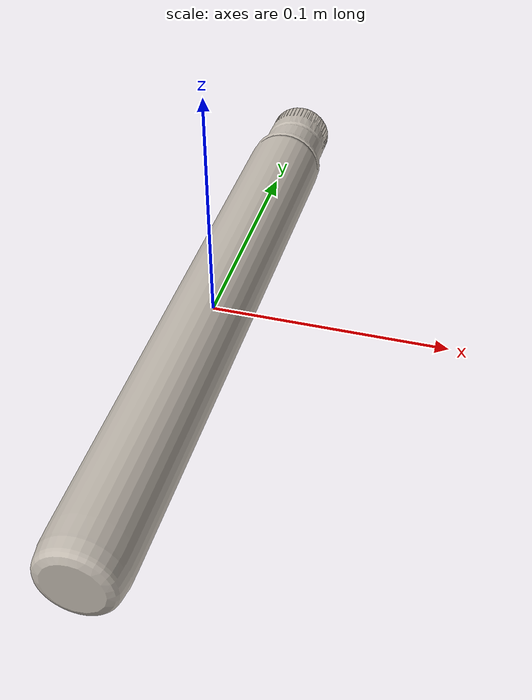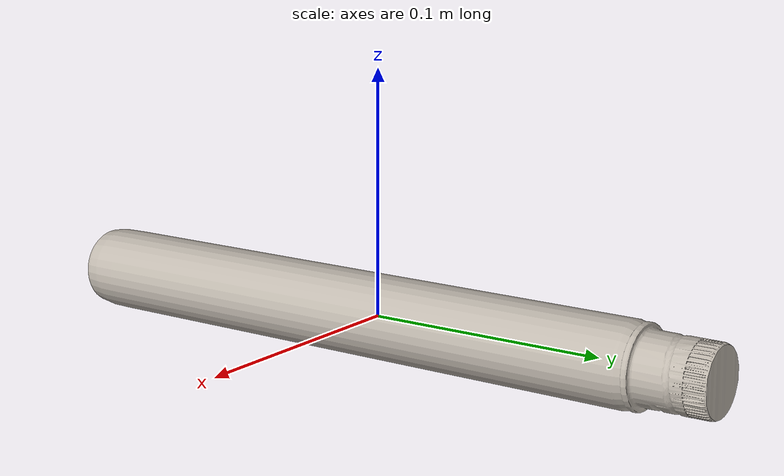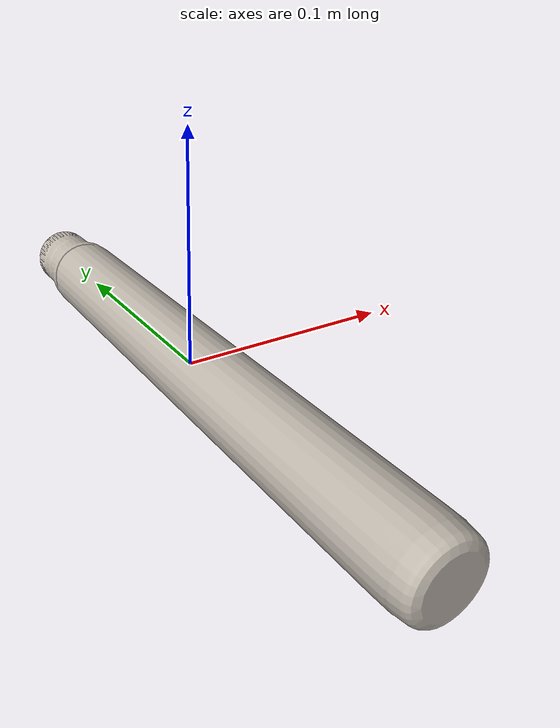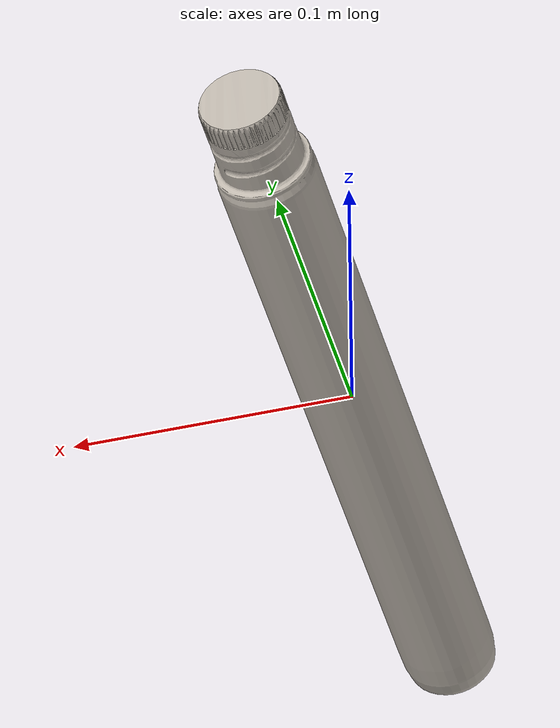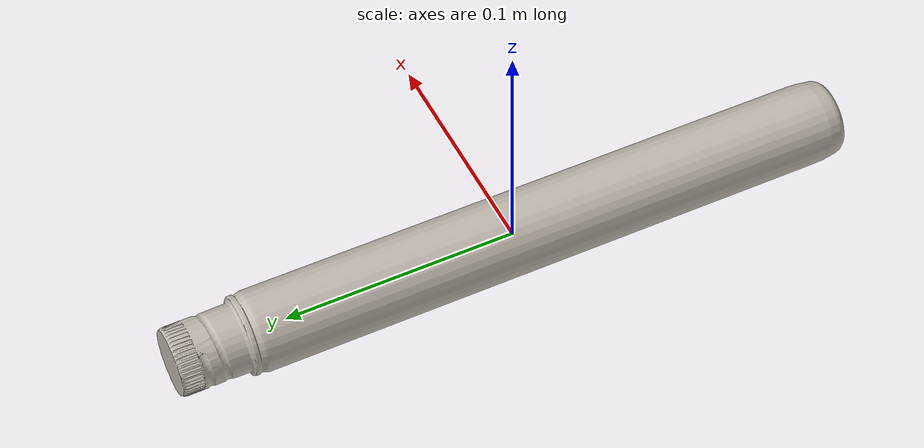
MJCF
<mujoco model="vase_e22b6eb7">
  <compiler angle="radian"/>
  <asset>
    <texture type="2d" name="vase_e22b6eb7_tex" file="vase_e22b6eb7_visual_0.png"/>
    <material name="vase_e22b6eb7_mat" texture="vase_e22b6eb7_tex"/>
    <mesh name="vase_e22b6eb7_visual" content_type="model/obj" file="vase_e22b6eb7_visual.obj" scale="-1 1.49013 1"/>
    <mesh name="vase_e22b6eb7_c0" content_type="model/obj" file="vase_e22b6eb7_c0.obj" scale="-1 1.49013 1"/>
  </asset>
  <worldbody>
    <body name="vase_e22b6eb7">
      <freejoint/>
      <geom name="vase_e22b6eb7_visual" type="mesh" mesh="vase_e22b6eb7_visual" mass="1e-8" contype="0" conaffinity="0" group="2" material="vase_e22b6eb7_mat"/>
      <geom name="vase_e22b6eb7_c0" type="mesh" mesh="vase_e22b6eb7_c0" group="3" density="1084.75" friction="0.9 0.05 0.005" condim="4" rgba="0.4 0.5 0.9 0.35"/>
    </body>
  </worldbody>
</mujoco>
